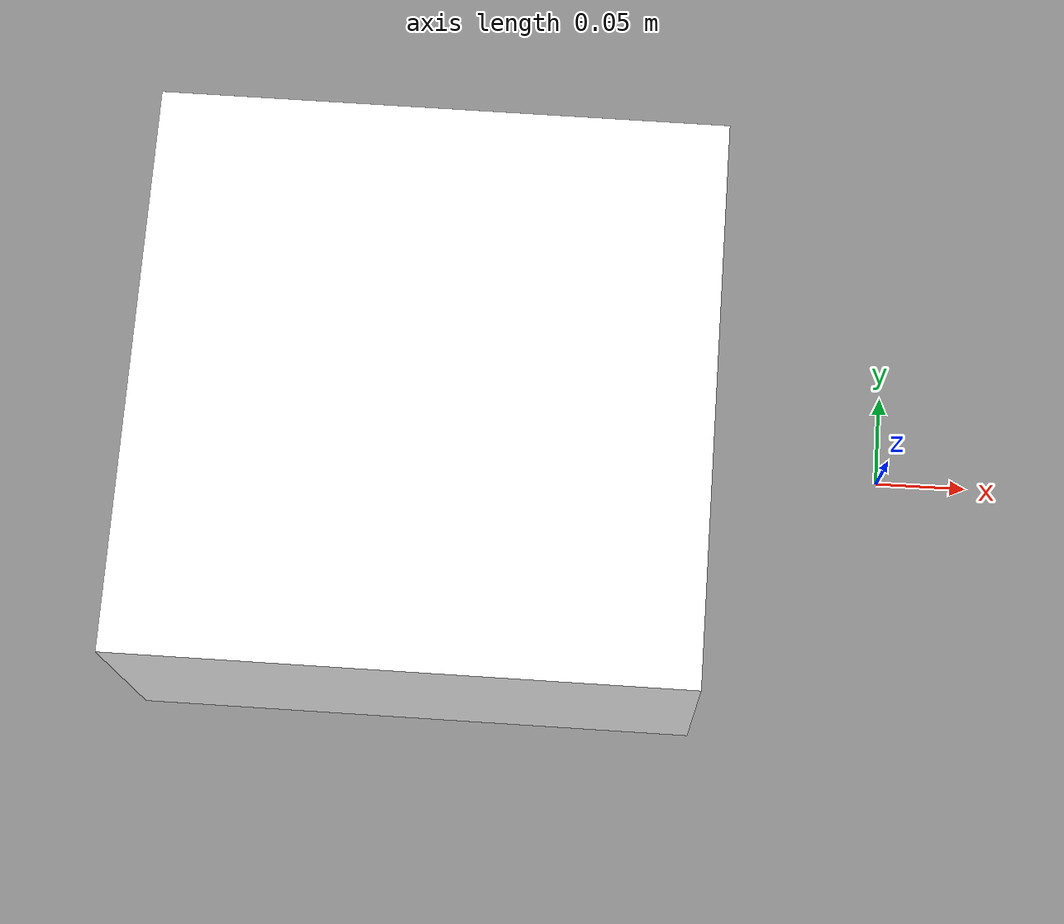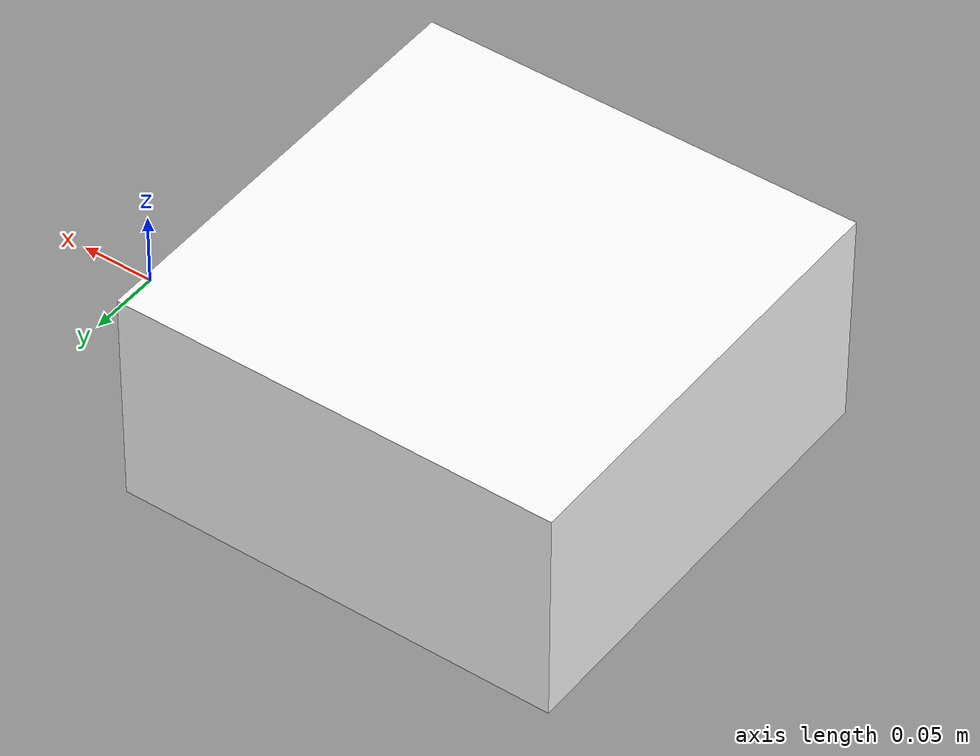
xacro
<?xml version="1.0"?>
<robot xmlns:xacro="http://www.ros.org/wiki/xacro" name="kbot">
  <material name = "white">
      <color rgba = "1 1 1 1"/>
  </material>
  <material name = "orange">
      <color rgba = "1 0.3 0.1 1"/>
  </material>
  <material name = "black">
      <color rgba = "0 0 0 1"/>
  </material>
  <link name="base_link">
  </link>
  <joint name = "chassis_joint" type = "fixed">
      <parent link = "base_link"/>
      <child link = "chassis_link"/>
      <origin xyz = "-0.1 0 0"/>
  </joint>
  <link name = "chassis_link">
      <visual>
          <origin xyz = "-.15 0 0.075"/>
          <geometry>
              <box size="0.3 0.3 0.15"/>
          </geometry>
          <material name = "white"/>
      </visual>
  </link>
</robot>
